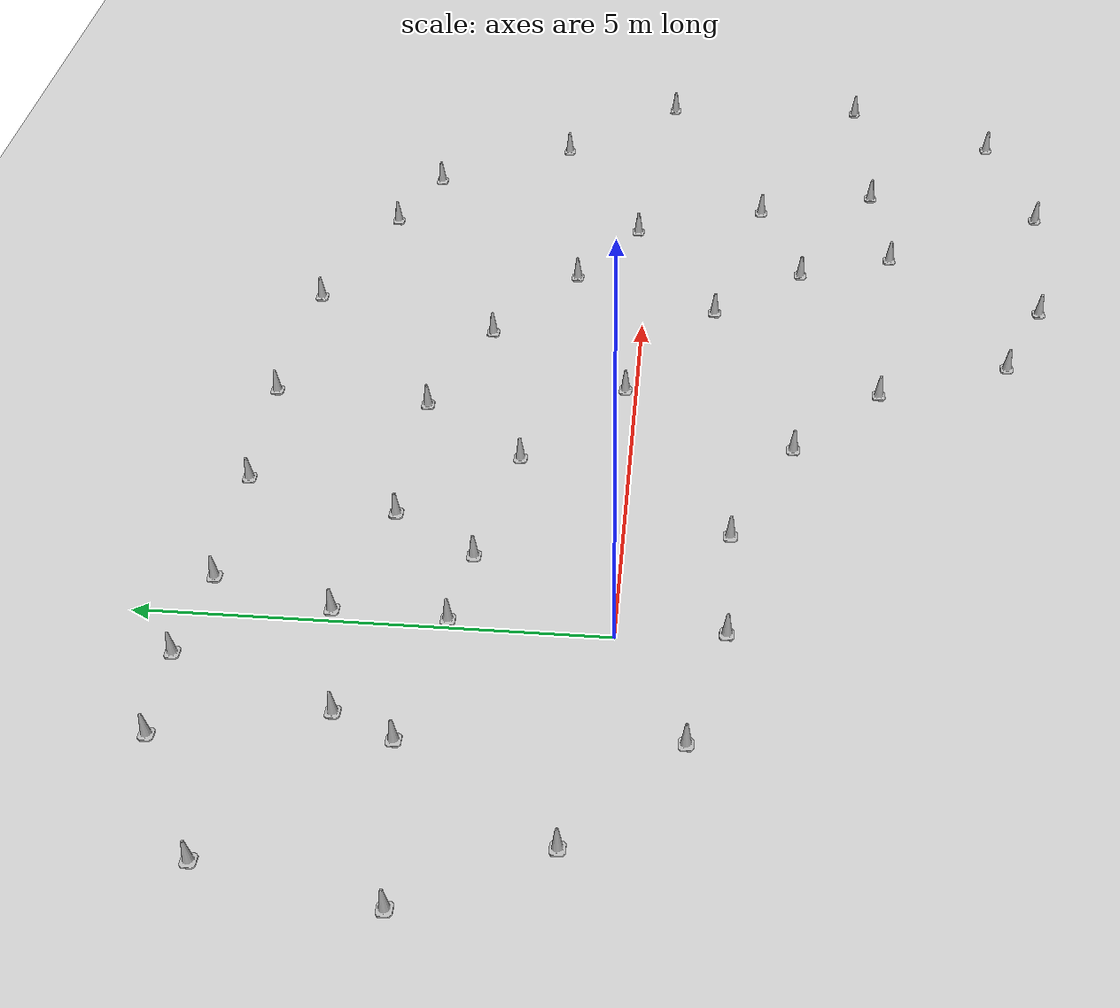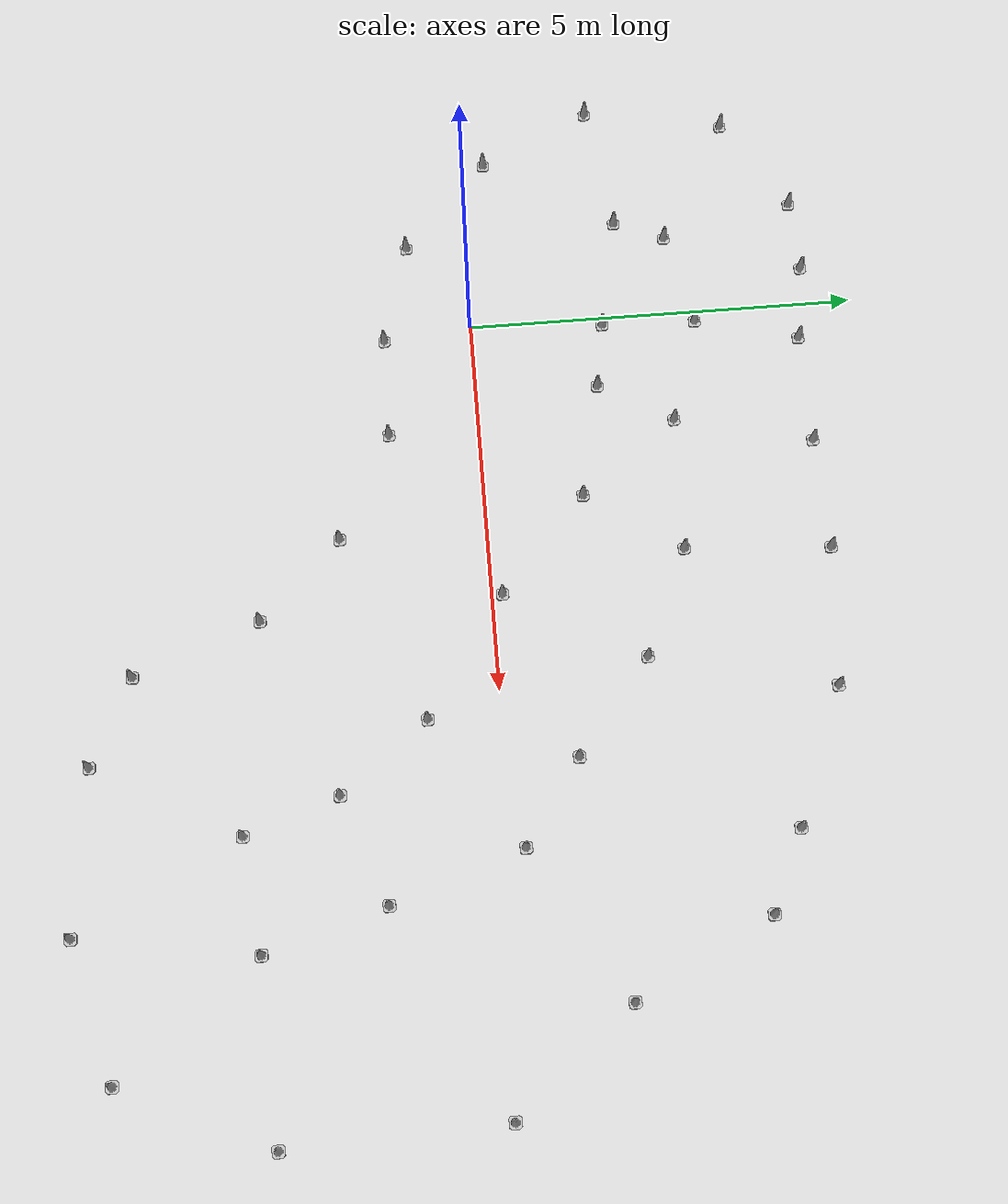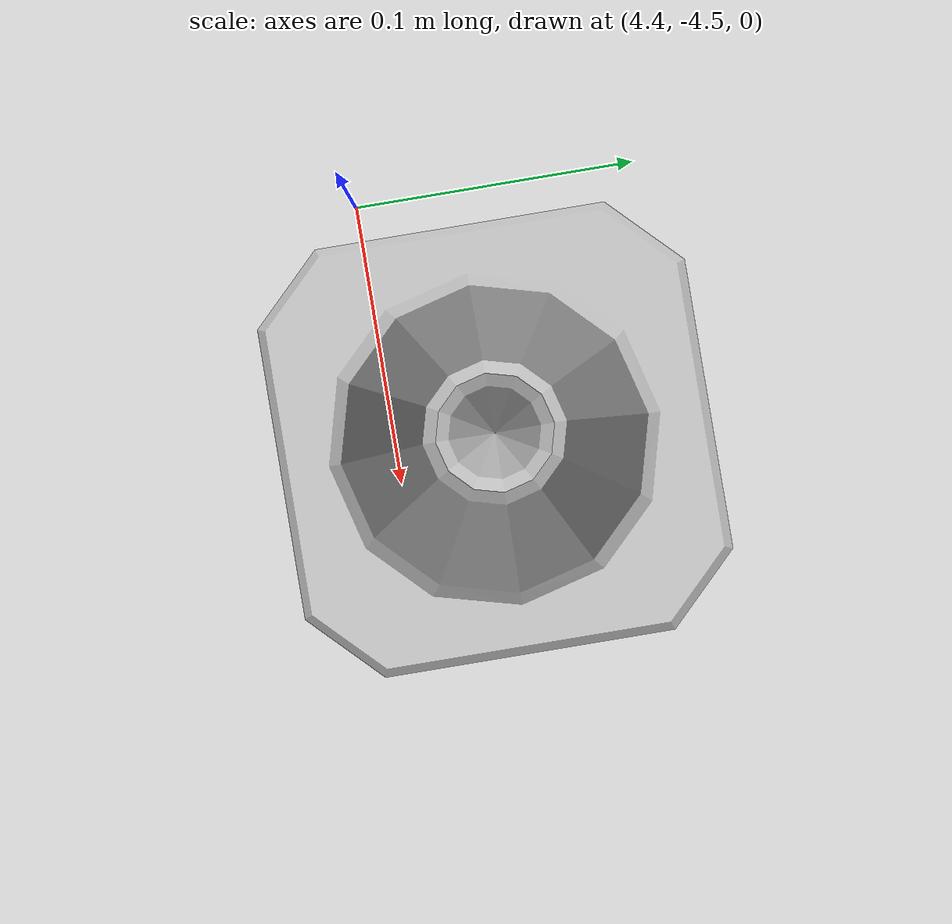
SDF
<sdf version="1.7">
 <world name="default">
  <light name="sun" type="directional">
   <pose>0 0 10 0 -0 0</pose>
   <diffuse>0.8 0.8 0.8 1</diffuse>
   <specular>0.2 0.2 0.2 1</specular>
   <attenuation>
    <range>1000</range>
    <constant>0.9</constant>
    <linear>0.01</linear>
    <quadratic>0.001</quadratic>
   </attenuation>
   <direction>-0.5 0.1 -0.9</direction>
   <spot><inner_angle>0</inner_angle><outer_angle>0</outer_angle><falloff>0</falloff></spot>
  </light>
  <model name="ground_plane">
   <static>1</static>
   <link name="link">
    <collision name="collision">
     <geometry><plane><normal>0 0 1</normal><size>100 100</size></plane></geometry>
     <surface>
      <contact><collide_bitmask>65535</collide_bitmask></contact>
      <friction><ode><mu>100</mu><mu2>50</mu2></ode></friction>
     </surface>
    </collision>
    <visual name="visual">
     <cast_shadows>0</cast_shadows>
     <geometry><plane><normal>0 0 1</normal><size>100 100</size></plane></geometry>
     <material>
      <script><uri>file://media/materials/scripts/gazebo.material</uri><name>Gazebo/Grey</name></script>
     </material>
    </visual>
   </link>
  </model>
  <gravity>0 0 -9.8</gravity>
  <magnetic_field>6e-06 2.3e-05 -4.2e-05</magnetic_field>
  <atmosphere type="adiabatic"/>
  <physics type="ode">
   <max_step_size>0.001</max_step_size>
   <real_time_factor>1</real_time_factor>
   <real_time_update_rate>1000</real_time_update_rate>
  </physics>
  <scene><ambient>0.4 0.4 0.4 1</ambient><background>0.7 0.7 0.7 1</background><shadows>1</shadows></scene>
  <spherical_coordinates>
   <surface_model>EARTH_WGS84</surface_model>
   <latitude_deg>0</latitude_deg>
   <longitude_deg>0</longitude_deg>
   <elevation>0</elevation>
   <heading_deg>0</heading_deg>
  </spherical_coordinates>
  <model name="Construction Cone">
   <link name="link">
    <collision name="collision">
     <geometry>
      <mesh><scale>3 3 3</scale><uri>model://construction_cone/meshes/construction_cone.dae</uri></mesh>
     </geometry>
    </collision>
    <visual name="visual">
     <geometry>
      <mesh><scale>3 3 3</scale><uri>model://construction_cone/meshes/construction_cone.dae</uri></mesh>
     </geometry>
    </visual>
    <inertial>
     <inertia><ixx>1</ixx><ixy>0</ixy><ixz>0</ixz><iyy>1</iyy><iyz>0</iyz><izz>1</izz></inertia>
     <mass>1</mass>
    </inertial>
   </link>
   <pose>0.132449 -1.1357 -9e-06 -3e-06 5e-06 0</pose>
  </model>
  <model name="Construction Cone_clone">
   <link name="link">
    <collision name="collision">
     <geometry>
      <mesh><scale>3 3 3</scale><uri>model://construction_cone/meshes/construction_cone.dae</uri></mesh>
     </geometry>
    </collision>
    <visual name="visual">
     <geometry>
      <mesh><scale>3 3 3</scale><uri>model://construction_cone/meshes/construction_cone.dae</uri></mesh>
     </geometry>
    </visual>
    <inertial>
     <inertia><ixx>1</ixx><ixy>0</ixy><ixz>0</ixz><iyy>1</iyy><iyz>0</iyz><izz>1</izz></inertia>
     <mass>1</mass>
    </inertial>
   </link>
   <pose>1.48399 -1.15149 -0 2e-06 -3e-06 0</pose>
  </model>
  <model name="Construction Cone_clone_0">
   <link name="link">
    <collision name="collision">
     <geometry>
      <mesh><scale>3 3 3</scale><uri>model://construction_cone/meshes/construction_cone.dae</uri></mesh>
     </geometry>
    </collision>
    <visual name="visual">
     <geometry>
      <mesh><scale>3 3 3</scale><uri>model://construction_cone/meshes/construction_cone.dae</uri></mesh>
     </geometry>
    </visual>
    <inertial>
     <inertia><ixx>1</ixx><ixy>0</ixy><ixz>0</ixz><iyy>1</iyy><iyz>0</iyz><izz>1</izz></inertia>
     <mass>1</mass>
    </inertial>
   </link>
   <pose>2.87596 -1.85076 -0 2e-06 2e-06 0</pose>
  </model>
  <model name="Construction Cone_clone_1">
   <link name="link">
    <collision name="collision">
     <geometry>
      <mesh><scale>3 3 3</scale><uri>model://construction_cone/meshes/construction_cone.dae</uri></mesh>
     </geometry>
    </collision>
    <visual name="visual">
     <geometry>
      <mesh><scale>3 3 3</scale><uri>model://construction_cone/meshes/construction_cone.dae</uri></mesh>
     </geometry>
    </visual>
    <inertial>
     <inertia><ixx>1</ixx><ixy>0</ixy><ixz>0</ixz><iyy>1</iyy><iyz>0</iyz><izz>1</izz></inertia>
     <mass>1</mass>
    </inertial>
   </link>
   <pose>3.88556 -2.88296 -0 3e-06 2e-06 0</pose>
  </model>
  <model name="Construction Cone_clone_2">
   <link name="link">
    <collision name="collision">
     <geometry>
      <mesh><scale>3 3 3</scale><uri>model://construction_cone/meshes/construction_cone.dae</uri></mesh>
     </geometry>
    </collision>
    <visual name="visual">
     <geometry>
      <mesh><scale>3 3 3</scale><uri>model://construction_cone/meshes/construction_cone.dae</uri></mesh>
     </geometry>
    </visual>
    <inertial>
     <inertia><ixx>1</ixx><ixy>0</ixy><ixz>0</ixz><iyy>1</iyy><iyz>0</iyz><izz>1</izz></inertia>
     <mass>1</mass>
    </inertial>
   </link>
   <pose>5.59077 -4.99364 0 0 6e-06 0</pose>
  </model>
  <model name="Construction Cone_clone_3">
   <link name="link">
    <collision name="collision">
     <geometry>
      <mesh><scale>3 3 3</scale><uri>model://construction_cone/meshes/construction_cone.dae</uri></mesh>
     </geometry>
    </collision>
    <visual name="visual">
     <geometry>
      <mesh><scale>3 3 3</scale><uri>model://construction_cone/meshes/construction_cone.dae</uri></mesh>
     </geometry>
    </visual>
    <inertial>
     <inertia><ixx>1</ixx><ixy>0</ixy><ixz>0</ixz><iyy>1</iyy><iyz>0</iyz><izz>1</izz></inertia>
     <mass>1</mass>
    </inertial>
   </link>
   <pose>0.116907 1.72211 -0 1e-06 3e-06 -0</pose>
  </model>
  <model name="Construction Cone_clone_4">
   <link name="link">
    <collision name="collision">
     <geometry>
      <mesh><scale>3 3 3</scale><uri>model://construction_cone/meshes/construction_cone.dae</uri></mesh>
     </geometry>
    </collision>
    <visual name="visual">
     <geometry>
      <mesh><scale>3 3 3</scale><uri>model://construction_cone/meshes/construction_cone.dae</uri></mesh>
     </geometry>
    </visual>
    <inertial>
     <inertia><ixx>1</ixx><ixy>0</ixy><ixz>0</ixz><iyy>1</iyy><iyz>0</iyz><izz>1</izz></inertia>
     <mass>1</mass>
    </inertial>
   </link>
   <pose>1 1.57648 -9e-06 1e-06 4e-06 0</pose>
  </model>
  <model name="Construction Cone_clone_5">
   <link name="link">
    <collision name="collision">
     <geometry>
      <mesh><scale>3 3 3</scale><uri>model://construction_cone/meshes/construction_cone.dae</uri></mesh>
     </geometry>
    </collision>
    <visual name="visual">
     <geometry>
      <mesh><scale>3 3 3</scale><uri>model://construction_cone/meshes/construction_cone.dae</uri></mesh>
     </geometry>
    </visual>
    <inertial>
     <inertia><ixx>1</ixx><ixy>0</ixy><ixz>0</ixz><iyy>1</iyy><iyz>0</iyz><izz>1</izz></inertia>
     <mass>1</mass>
    </inertial>
   </link>
   <pose>2.5158 1.25236 -0 3e-06 -2e-06 0</pose>
  </model>
  <model name="Construction Cone_clone_6">
   <link name="link">
    <collision name="collision">
     <geometry>
      <mesh><scale>3 3 3</scale><uri>model://construction_cone/meshes/construction_cone.dae</uri></mesh>
     </geometry>
    </collision>
    <visual name="visual">
     <geometry>
      <mesh><scale>3 3 3</scale><uri>model://construction_cone/meshes/construction_cone.dae</uri></mesh>
     </geometry>
    </visual>
    <inertial>
     <inertia><ixx>1</ixx><ixy>0</ixy><ixz>0</ixz><iyy>1</iyy><iyz>0</iyz><izz>1</izz></inertia>
     <mass>1</mass>
    </inertial>
   </link>
   <pose>3.76382 0.13455 -1e-06 2e-06 -1e-06 -0</pose>
  </model>
  <model name="Construction Cone_clone_7">
   <link name="link">
    <collision name="collision">
     <geometry>
      <mesh><scale>3 3 3</scale><uri>model://construction_cone/meshes/construction_cone.dae</uri></mesh>
     </geometry>
    </collision>
    <visual name="visual">
     <geometry>
      <mesh><scale>3 3 3</scale><uri>model://construction_cone/meshes/construction_cone.dae</uri></mesh>
     </geometry>
    </visual>
    <inertial>
     <inertia><ixx>1</ixx><ixy>0</ixy><ixz>0</ixz><iyy>1</iyy><iyz>0</iyz><izz>1</izz></inertia>
     <mass>1</mass>
    </inertial>
   </link>
   <pose>5.3092 -0.895762 1e-06 1e-06 1.1e-05 -0</pose>
  </model>
  <model name="Construction Cone_clone_8">
   <link name="link">
    <collision name="collision">
     <geometry>
      <mesh><scale>3 3 3</scale><uri>model://construction_cone/meshes/construction_cone.dae</uri></mesh>
     </geometry>
    </collision>
    <visual name="visual">
     <geometry>
      <mesh><scale>3 3 3</scale><uri>model://construction_cone/meshes/construction_cone.dae</uri></mesh>
     </geometry>
    </visual>
    <inertial>
     <inertia><ixx>1</ixx><ixy>0</ixy><ixz>0</ixz><iyy>1</iyy><iyz>0</iyz><izz>1</izz></inertia>
     <mass>1</mass>
    </inertial>
   </link>
   <pose>6.17257 -1.99822 -9e-06 2e-06 -1e-06 -0</pose>
  </model>
  <model name="Construction Cone_clone_9">
   <link name="link">
    <collision name="collision">
     <geometry>
      <mesh><scale>3 3 3</scale><uri>model://construction_cone/meshes/construction_cone.dae</uri></mesh>
     </geometry>
    </collision>
    <visual name="visual">
     <geometry>
      <mesh><scale>3 3 3</scale><uri>model://construction_cone/meshes/construction_cone.dae</uri></mesh>
     </geometry>
    </visual>
    <inertial>
     <inertia><ixx>1</ixx><ixy>0</ixy><ixz>0</ixz><iyy>1</iyy><iyz>0</iyz><izz>1</izz></inertia>
     <mass>1</mass>
    </inertial>
   </link>
   <pose>8 -3 0 4e-06 2e-06 -0</pose>
  </model>
  <model name="Construction Cone_clone_10">
   <link name="link">
    <collision name="collision">
     <geometry>
      <mesh><scale>3 3 3</scale><uri>model://construction_cone/meshes/construction_cone.dae</uri></mesh>
     </geometry>
    </collision>
    <visual name="visual">
     <geometry>
      <mesh><scale>3 3 3</scale><uri>model://construction_cone/meshes/construction_cone.dae</uri></mesh>
     </geometry>
    </visual>
    <inertial>
     <inertia><ixx>1</ixx><ixy>0</ixy><ixz>0</ixz><iyy>1</iyy><iyz>0</iyz><izz>1</izz></inertia>
     <mass>1</mass>
    </inertial>
   </link>
   <pose>7.63503 -5.2107 -9e-06 0 4e-06 0</pose>
  </model>
  <model name="Construction Cone_clone_11">
   <link name="link">
    <collision name="collision">
     <geometry>
      <mesh><scale>3 3 3</scale><uri>model://construction_cone/meshes/construction_cone.dae</uri></mesh>
     </geometry>
    </collision>
    <visual name="visual">
     <geometry>
      <mesh><scale>3 3 3</scale><uri>model://construction_cone/meshes/construction_cone.dae</uri></mesh>
     </geometry>
    </visual>
    <inertial>
     <inertia><ixx>1</ixx><ixy>0</ixy><ixz>0</ixz><iyy>1</iyy><iyz>0</iyz><izz>1</izz></inertia>
     <mass>1</mass>
    </inertial>
   </link>
   <pose>9.35089 -4.73538 -0 -5e-06 4e-06 0</pose>
  </model>
  <model name="Construction Cone_clone_12">
   <link name="link">
    <collision name="collision">
     <geometry>
      <mesh><scale>3 3 3</scale><uri>model://construction_cone/meshes/construction_cone.dae</uri></mesh>
     </geometry>
    </collision>
    <visual name="visual">
     <geometry>
      <mesh><scale>3 3 3</scale><uri>model://construction_cone/meshes/construction_cone.dae</uri></mesh>
     </geometry>
    </visual>
    <inertial>
     <inertia><ixx>1</ixx><ixy>0</ixy><ixz>0</ixz><iyy>1</iyy><iyz>0</iyz><izz>1</izz></inertia>
     <mass>1</mass>
    </inertial>
   </link>
   <pose>10.205 -2.88139 0 2e-06 2e-06 0</pose>
  </model>
  <model name="Construction Cone_clone_13">
   <link name="link">
    <collision name="collision">
     <geometry>
      <mesh><scale>3 3 3</scale><uri>model://construction_cone/meshes/construction_cone.dae</uri></mesh>
     </geometry>
    </collision>
    <visual name="visual">
     <geometry>
      <mesh><scale>3 3 3</scale><uri>model://construction_cone/meshes/construction_cone.dae</uri></mesh>
     </geometry>
    </visual>
    <inertial>
     <inertia><ixx>1</ixx><ixy>0</ixy><ixz>0</ixz><iyy>1</iyy><iyz>0</iyz><izz>1</izz></inertia>
     <mass>1</mass>
    </inertial>
   </link>
   <pose>10.1053 -0.208406 -0 1e-06 -3e-06 0</pose>
  </model>
  <model name="Construction Cone_clone_14">
   <link name="link">
    <collision name="collision">
     <geometry>
      <mesh><scale>3 3 3</scale><uri>model://construction_cone/meshes/construction_cone.dae</uri></mesh>
     </geometry>
    </collision>
    <visual name="visual">
     <geometry>
      <mesh><scale>3 3 3</scale><uri>model://construction_cone/meshes/construction_cone.dae</uri></mesh>
     </geometry>
    </visual>
    <inertial>
     <inertia><ixx>1</ixx><ixy>0</ixy><ixz>0</ixz><iyy>1</iyy><iyz>0</iyz><izz>1</izz></inertia>
     <mass>1</mass>
    </inertial>
   </link>
   <pose>8.88155 1.27339 -9e-06 6e-06 -7e-06 0</pose>
  </model>
  <model name="Construction Cone_clone_15">
   <link name="link">
    <collision name="collision">
     <geometry>
      <mesh><scale>3 3 3</scale><uri>model://construction_cone/meshes/construction_cone.dae</uri></mesh>
     </geometry>
    </collision>
    <visual name="visual">
     <geometry>
      <mesh><scale>3 3 3</scale><uri>model://construction_cone/meshes/construction_cone.dae</uri></mesh>
     </geometry>
    </visual>
    <inertial>
     <inertia><ixx>1</ixx><ixy>0</ixy><ixz>0</ixz><iyy>1</iyy><iyz>0</iyz><izz>1</izz></inertia>
     <mass>1</mass>
    </inertial>
   </link>
   <pose>7.5393 -1.48741 -9e-06 7e-06 -3e-06 0</pose>
  </model>
  <model name="Construction Cone_clone_16">
   <link name="link">
    <collision name="collision">
     <geometry>
      <mesh><scale>3 3 3</scale><uri>model://construction_cone/meshes/construction_cone.dae</uri></mesh>
     </geometry>
    </collision>
    <visual name="visual">
     <geometry>
      <mesh><scale>3 3 3</scale><uri>model://construction_cone/meshes/construction_cone.dae</uri></mesh>
     </geometry>
    </visual>
    <inertial>
     <inertia><ixx>1</ixx><ixy>0</ixy><ixz>0</ixz><iyy>1</iyy><iyz>0</iyz><izz>1</izz></inertia>
     <mass>1</mass>
    </inertial>
   </link>
   <pose>6.97899 0.167454 -9e-06 3e-06 1e-06 -0</pose>
  </model>
  <model name="Construction Cone_clone_17">
   <link name="link">
    <collision name="collision">
     <geometry>
      <mesh><scale>3 3 3</scale><uri>model://construction_cone/meshes/construction_cone.dae</uri></mesh>
     </geometry>
    </collision>
    <visual name="visual">
     <geometry>
      <mesh><scale>3 3 3</scale><uri>model://construction_cone/meshes/construction_cone.dae</uri></mesh>
     </geometry>
    </visual>
    <inertial>
     <inertia><ixx>1</ixx><ixy>0</ixy><ixz>0</ixz><iyy>1</iyy><iyz>0</iyz><izz>1</izz></inertia>
     <mass>1</mass>
    </inertial>
   </link>
   <pose>5.92201 0.897214 -9e-06 1e-06 -7e-06 -0</pose>
  </model>
  <model name="Construction Cone_clone_18">
   <link name="link">
    <collision name="collision">
     <geometry>
      <mesh><scale>3 3 3</scale><uri>model://construction_cone/meshes/construction_cone.dae</uri></mesh>
     </geometry>
    </collision>
    <visual name="visual">
     <geometry>
      <mesh><scale>3 3 3</scale><uri>model://construction_cone/meshes/construction_cone.dae</uri></mesh>
     </geometry>
    </visual>
    <inertial>
     <inertia><ixx>1</ixx><ixy>0</ixy><ixz>0</ixz><iyy>1</iyy><iyz>0</iyz><izz>1</izz></inertia>
     <mass>1</mass>
    </inertial>
   </link>
   <pose>8 3 -9e-06 6e-06 4e-06 0</pose>
  </model>
  <model name="Construction Cone_clone_19">
   <link name="link">
    <collision name="collision">
     <geometry>
      <mesh><scale>3 3 3</scale><uri>model://construction_cone/meshes/construction_cone.dae</uri></mesh>
     </geometry>
    </collision>
    <visual name="visual">
     <geometry>
      <mesh><scale>3 3 3</scale><uri>model://construction_cone/meshes/construction_cone.dae</uri></mesh>
     </geometry>
    </visual>
    <inertial>
     <inertia><ixx>1</ixx><ixy>0</ixy><ixz>0</ixz><iyy>1</iyy><iyz>0</iyz><izz>1</izz></inertia>
     <mass>1</mass>
    </inertial>
   </link>
   <pose>7.00085 3.44535 -8e-06 -4e-06 4e-06 0</pose>
  </model>
  <model name="Construction Cone_clone_20">
   <link name="link">
    <collision name="collision">
     <geometry>
      <mesh><scale>3 3 3</scale><uri>model://construction_cone/meshes/construction_cone.dae</uri></mesh>
     </geometry>
    </collision>
    <visual name="visual">
     <geometry>
      <mesh><scale>3 3 3</scale><uri>model://construction_cone/meshes/construction_cone.dae</uri></mesh>
     </geometry>
    </visual>
    <inertial>
     <inertia><ixx>1</ixx><ixy>0</ixy><ixz>0</ixz><iyy>1</iyy><iyz>0</iyz><izz>1</izz></inertia>
     <mass>1</mass>
    </inertial>
   </link>
   <pose>4.72135 1.85101 -9e-06 4e-06 -2e-06 0</pose>
  </model>
  <model name="Construction Cone_clone_21">
   <link name="link">
    <collision name="collision">
     <geometry>
      <mesh><scale>3 3 3</scale><uri>model://construction_cone/meshes/construction_cone.dae</uri></mesh>
     </geometry>
    </collision>
    <visual name="visual">
     <geometry>
      <mesh><scale>3 3 3</scale><uri>model://construction_cone/meshes/construction_cone.dae</uri></mesh>
     </geometry>
    </visual>
    <inertial>
     <inertia><ixx>1</ixx><ixy>0</ixy><ixz>0</ixz><iyy>1</iyy><iyz>0</iyz><izz>1</izz></inertia>
     <mass>1</mass>
    </inertial>
   </link>
   <pose>3.33686 2.45121 0 -1e-06 -4e-06 0</pose>
  </model>
  <model name="Construction Cone_clone_22">
   <link name="link">
    <collision name="collision">
     <geometry>
      <mesh><scale>3 3 3</scale><uri>model://construction_cone/meshes/construction_cone.dae</uri></mesh>
     </geometry>
    </collision>
    <visual name="visual">
     <geometry>
      <mesh><scale>3 3 3</scale><uri>model://construction_cone/meshes/construction_cone.dae</uri></mesh>
     </geometry>
    </visual>
    <inertial>
     <inertia><ixx>1</ixx><ixy>0</ixy><ixz>0</ixz><iyy>1</iyy><iyz>0</iyz><izz>1</izz></inertia>
     <mass>1</mass>
    </inertial>
   </link>
   <pose>5.27283 4.13631 -1e-05 -1e-06 2e-06 -0</pose>
  </model>
  <model name="Construction Cone_clone_23">
   <link name="link">
    <collision name="collision">
     <geometry>
      <mesh><scale>3 3 3</scale><uri>model://construction_cone/meshes/construction_cone.dae</uri></mesh>
     </geometry>
    </collision>
    <visual name="visual">
     <geometry>
      <mesh><scale>3 3 3</scale><uri>model://construction_cone/meshes/construction_cone.dae</uri></mesh>
     </geometry>
    </visual>
    <inertial>
     <inertia><ixx>1</ixx><ixy>0</ixy><ixz>0</ixz><iyy>1</iyy><iyz>0</iyz><izz>1</izz></inertia>
     <mass>1</mass>
    </inertial>
   </link>
   <pose>3.46113 4.29104 -8e-06 6e-06 -6e-06 0</pose>
  </model>
  <model name="Construction Cone_clone_24">
   <link name="link">
    <collision name="collision">
     <geometry>
      <mesh><scale>3 3 3</scale><uri>model://construction_cone/meshes/construction_cone.dae</uri></mesh>
     </geometry>
    </collision>
    <visual name="visual">
     <geometry>
      <mesh><scale>3 3 3</scale><uri>model://construction_cone/meshes/construction_cone.dae</uri></mesh>
     </geometry>
    </visual>
    <inertial>
     <inertia><ixx>1</ixx><ixy>0</ixy><ixz>0</ixz><iyy>1</iyy><iyz>0</iyz><izz>1</izz></inertia>
     <mass>1</mass>
    </inertial>
   </link>
   <pose>1.98075 4.25966 0 5e-06 -2e-06 -0</pose>
  </model>
  <model name="Construction Cone_clone_25">
   <link name="link">
    <collision name="collision">
     <geometry>
      <mesh><scale>3 3 3</scale><uri>model://construction_cone/meshes/construction_cone.dae</uri></mesh>
     </geometry>
    </collision>
    <visual name="visual">
     <geometry>
      <mesh><scale>3 3 3</scale><uri>model://construction_cone/meshes/construction_cone.dae</uri></mesh>
     </geometry>
    </visual>
    <inertial>
     <inertia><ixx>1</ixx><ixy>0</ixy><ixz>0</ixz><iyy>1</iyy><iyz>0</iyz><izz>1</izz></inertia>
     <mass>1</mass>
    </inertial>
   </link>
   <pose>0.508003 4.26396 -0 -2e-06 3e-06 0</pose>
  </model>
  <model name="Construction Cone_clone_26">
   <link name="link">
    <collision name="collision">
     <geometry>
      <mesh><scale>3 3 3</scale><uri>model://construction_cone/meshes/construction_cone.dae</uri></mesh>
     </geometry>
    </collision>
    <visual name="visual">
     <geometry>
      <mesh><scale>3 3 3</scale><uri>model://construction_cone/meshes/construction_cone.dae</uri></mesh>
     </geometry>
    </visual>
    <inertial>
     <inertia><ixx>1</ixx><ixy>0</ixy><ixz>0</ixz><iyy>1</iyy><iyz>0</iyz><izz>1</izz></inertia>
     <mass>1</mass>
    </inertial>
   </link>
   <pose>1.55587 2.51516 -0 3e-06 2e-06 0</pose>
  </model>
  <model name="Construction Cone_clone_27">
   <link name="link">
    <collision name="collision">
     <geometry>
      <mesh><scale>3 3 3</scale><uri>model://construction_cone/meshes/construction_cone.dae</uri></mesh>
     </geometry>
    </collision>
    <visual name="visual">
     <geometry>
      <mesh><scale>3 3 3</scale><uri>model://construction_cone/meshes/construction_cone.dae</uri></mesh>
     </geometry>
    </visual>
    <inertial>
     <inertia><ixx>1</ixx><ixy>0</ixy><ixz>0</ixz><iyy>1</iyy><iyz>0</iyz><izz>1</izz></inertia>
     <mass>1</mass>
    </inertial>
   </link>
   <pose>0.158551 2.93816 -0 -2e-06 1e-06 -0</pose>
  </model>
  <model name="Construction Cone_clone_28">
   <link name="link">
    <collision name="collision">
     <geometry>
      <mesh><scale>3 3 3</scale><uri>model://construction_cone/meshes/construction_cone.dae</uri></mesh>
     </geometry>
    </collision>
    <visual name="visual">
     <geometry>
      <mesh><scale>3 3 3</scale><uri>model://construction_cone/meshes/construction_cone.dae</uri></mesh>
     </geometry>
    </visual>
    <inertial>
     <inertia><ixx>1</ixx><ixy>0</ixy><ixz>0</ixz><iyy>1</iyy><iyz>0</iyz><izz>1</izz></inertia>
     <mass>1</mass>
    </inertial>
   </link>
   <pose>-1.11117 2.66342 -1e-06 2e-06 -1e-06 -0</pose>
  </model>
  <model name="Construction Cone_clone_29">
   <link name="link">
    <collision name="collision">
     <geometry>
      <mesh><scale>3 3 3</scale><uri>model://construction_cone/meshes/construction_cone.dae</uri></mesh>
     </geometry>
    </collision>
    <visual name="visual">
     <geometry>
      <mesh><scale>3 3 3</scale><uri>model://construction_cone/meshes/construction_cone.dae</uri></mesh>
     </geometry>
    </visual>
    <inertial>
     <inertia><ixx>1</ixx><ixy>0</ixy><ixz>0</ixz><iyy>1</iyy><iyz>0</iyz><izz>1</izz></inertia>
     <mass>1</mass>
    </inertial>
   </link>
   <pose>-1.38778 2.01724 0 3e-06 -2e-06 0</pose>
  </model>
  <model name="Construction Cone_clone_30">
   <link name="link">
    <collision name="collision">
     <geometry>
      <mesh><scale>3 3 3</scale><uri>model://construction_cone/meshes/construction_cone.dae</uri></mesh>
     </geometry>
    </collision>
    <visual name="visual">
     <geometry>
      <mesh><scale>3 3 3</scale><uri>model://construction_cone/meshes/construction_cone.dae</uri></mesh>
     </geometry>
    </visual>
    <inertial>
     <inertia><ixx>1</ixx><ixy>0</ixy><ixz>0</ixz><iyy>1</iyy><iyz>0</iyz><izz>1</izz></inertia>
     <mass>1</mass>
    </inertial>
   </link>
   <pose>-1.22944 -0.76939 -8e-06 3e-06 1.5e-05 0</pose>
  </model>
  <model name="Construction Cone_clone_31">
   <link name="link">
    <collision name="collision">
     <geometry>
      <mesh><scale>3 3 3</scale><uri>model://construction_cone/meshes/construction_cone.dae</uri></mesh>
     </geometry>
    </collision>
    <visual name="visual">
     <geometry>
      <mesh><scale>3 3 3</scale><uri>model://construction_cone/meshes/construction_cone.dae</uri></mesh>
     </geometry>
    </visual>
    <inertial>
     <inertia><ixx>1</ixx><ixy>0</ixy><ixz>0</ixz><iyy>1</iyy><iyz>0</iyz><izz>1</izz></inertia>
     <mass>1</mass>
    </inertial>
   </link>
   <pose>-2.42886 0.341142 -9e-06 5e-06 -4e-06 0</pose>
  </model>
  <model name="Construction Cone_clone_32">
   <link name="link">
    <collision name="collision">
     <geometry>
      <mesh><scale>3 3 3</scale><uri>model://construction_cone/meshes/construction_cone.dae</uri></mesh>
     </geometry>
    </collision>
    <visual name="visual">
     <geometry>
      <mesh><scale>3 3 3</scale><uri>model://construction_cone/meshes/construction_cone.dae</uri></mesh>
     </geometry>
    </visual>
    <inertial>
     <inertia><ixx>1</ixx><ixy>0</ixy><ixz>0</ixz><iyy>1</iyy><iyz>0</iyz><izz>1</izz></inertia>
     <mass>1</mass>
    </inertial>
   </link>
   <pose>-3.12883 1.78306 -9e-06 1e-06 3e-06 -0</pose>
  </model>
  <model name="Construction Cone_clone_33">
   <link name="link">
    <collision name="collision">
     <geometry>
      <mesh><scale>3 3 3</scale><uri>model://construction_cone/meshes/construction_cone.dae</uri></mesh>
     </geometry>
    </collision>
    <visual name="visual">
     <geometry>
      <mesh><scale>3 3 3</scale><uri>model://construction_cone/meshes/construction_cone.dae</uri></mesh>
     </geometry>
    </visual>
    <inertial>
     <inertia><ixx>1</ixx><ixy>0</ixy><ixz>0</ixz><iyy>1</iyy><iyz>0</iyz><izz>1</izz></inertia>
     <mass>1</mass>
    </inertial>
   </link>
   <pose>-2.79184 3.61313 -9e-06 3e-06 -2e-06 0</pose>
  </model>
  <model name="Construction Cone_clone_34">
   <link name="link">
    <collision name="collision">
     <geometry>
      <mesh><scale>3 3 3</scale><uri>model://construction_cone/meshes/construction_cone.dae</uri></mesh>
     </geometry>
    </collision>
    <visual name="visual">
     <geometry>
      <mesh><scale>3 3 3</scale><uri>model://construction_cone/meshes/construction_cone.dae</uri></mesh>
     </geometry>
    </visual>
    <inertial>
     <inertia><ixx>1</ixx><ixy>0</ixy><ixz>0</ixz><iyy>1</iyy><iyz>0</iyz><izz>1</izz></inertia>
     <mass>1</mass>
    </inertial>
   </link>
   <pose>-1.49695 4.39074 -2e-06 1e-06 -0 0</pose>
  </model>
  <model name="Construction Cone_clone_35">
   <link name="link">
    <collision name="collision">
     <geometry>
      <mesh><scale>3 3 3</scale><uri>model://construction_cone/meshes/construction_cone.dae</uri></mesh>
     </geometry>
    </collision>
    <visual name="visual">
     <geometry>
      <mesh><scale>3 3 3</scale><uri>model://construction_cone/meshes/construction_cone.dae</uri></mesh>
     </geometry>
    </visual>
    <inertial>
     <inertia><ixx>1</ixx><ixy>0</ixy><ixz>0</ixz><iyy>1</iyy><iyz>0</iyz><izz>1</izz></inertia>
     <mass>1</mass>
    </inertial>
   </link>
   <pose>-0.514037 4.42218 -1e-05 -2e-06 -0 0</pose>
  </model>
  <model name="Construction Cone_clone_36">
   <link name="link">
    <collision name="collision">
     <geometry>
      <mesh><scale>3 3 3</scale><uri>model://construction_cone/meshes/construction_cone.dae</uri></mesh>
     </geometry>
    </collision>
    <visual name="visual">
     <geometry>
      <mesh><scale>3 3 3</scale><uri>model://construction_cone/meshes/construction_cone.dae</uri></mesh>
     </geometry>
    </visual>
    <inertial>
     <inertia><ixx>1</ixx><ixy>0</ixy><ixz>0</ixz><iyy>1</iyy><iyz>0</iyz><izz>1</izz></inertia>
     <mass>1</mass>
    </inertial>
   </link>
   <pose>6.57798 -3.17391 -0 -2e-06 -1e-06 0</pose>
  </model>
  <model name="Construction Cone_clone_37">
   <link name="link">
    <collision name="collision">
     <geometry>
      <mesh><scale>3 3 3</scale><uri>model://construction_cone/meshes/construction_cone.dae</uri></mesh>
     </geometry>
    </collision>
    <visual name="visual">
     <geometry>
      <mesh><scale>3 3 3</scale><uri>model://construction_cone/meshes/construction_cone.dae</uri></mesh>
     </geometry>
    </visual>
    <inertial>
     <inertia><ixx>1</ixx><ixy>0</ixy><ixz>0</ixz><iyy>1</iyy><iyz>0</iyz><izz>1</izz></inertia>
     <mass>1</mass>
    </inertial>
   </link>
   <pose>4.48989 -4.46463 0 -3e-06 -5e-06 -0</pose>
  </model>
 </world>
</sdf>
